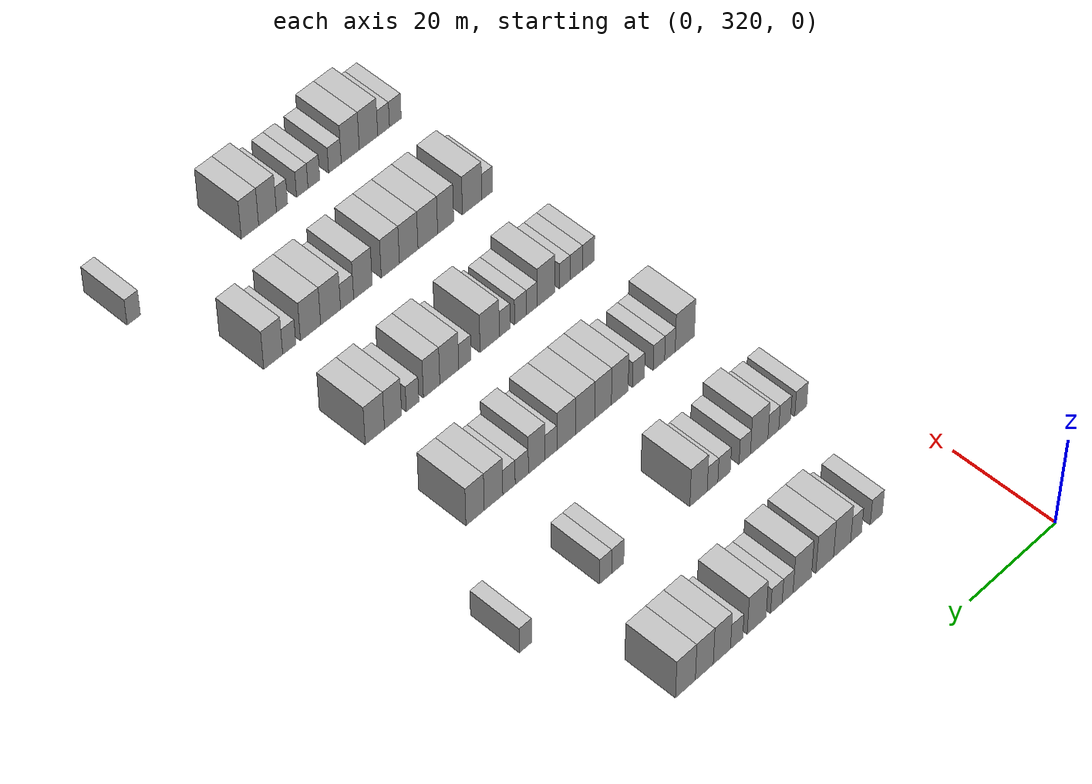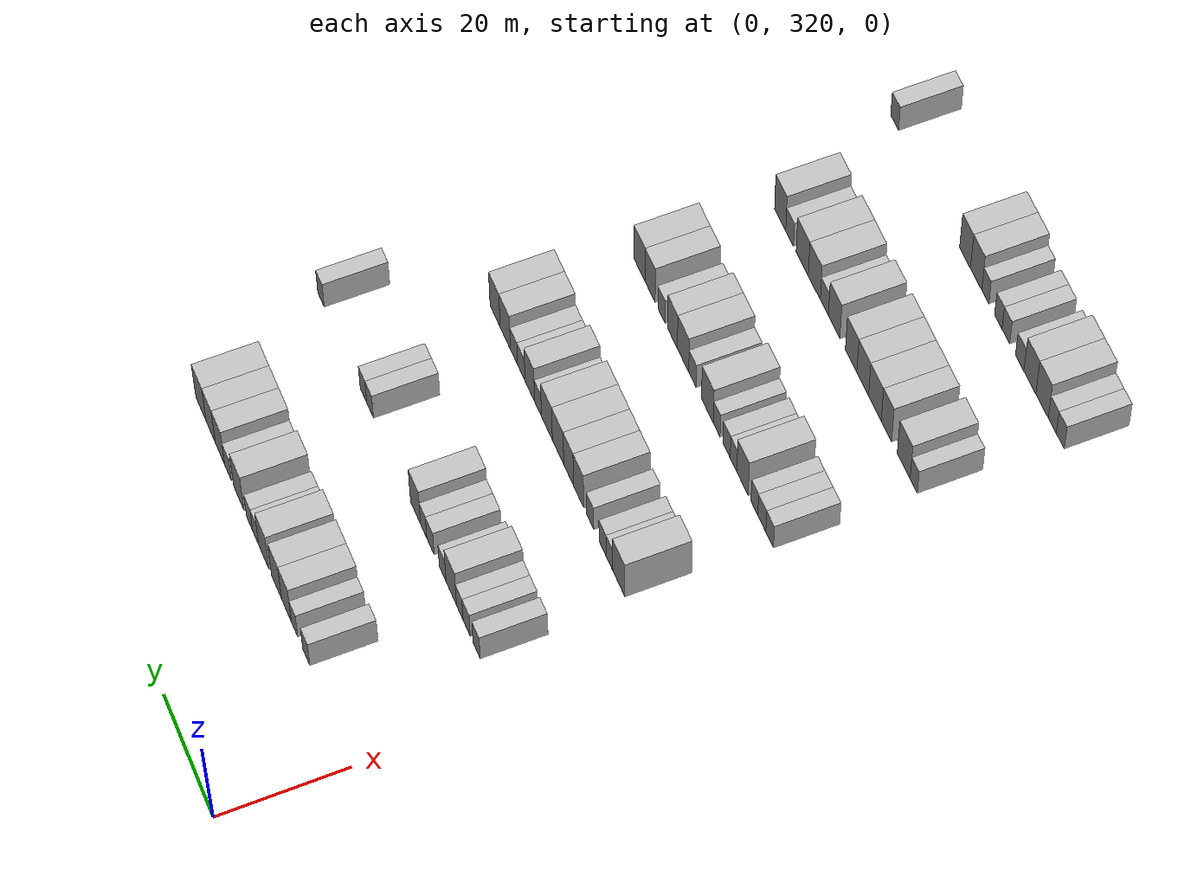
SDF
<sdf version="1.6">
 <world name="default">
  <model name="building_186">
   <static>1</static>
   <pose>25.0000 338.0738 0 0.000000 0.000000 0.000000</pose>
   <link name="link">
    <pose>0 0 3.00 0 0 0</pose>
    <collision name="collision"><geometry><box><size>10.0000 2.7817 6.0000</size></box></geometry></collision>
    <visual name="visual">
     <cast_shadows>0</cast_shadows>
     <geometry><box><size>10.0000 2.7817 6.0000</size></box></geometry>
     <material>
      <script>
       <uri>model://HANNAS_wall/materials/scripts</uri>
       <uri>model://HANNAS_wall/materials/textures</uri>
       <name>vrc/HANNAS_wall</name>
      </script>
     </material>
    </visual>
   </link>
  </model>
  <model name="building_187">
   <static>1</static>
   <pose>25.0000 342.7242 0 0.000000 0.000000 0.000000</pose>
   <link name="link">
    <pose>0 0 3.00 0 0 0</pose>
    <collision name="collision"><geometry><box><size>10.0000 2.5191 6.0000</size></box></geometry></collision>
    <visual name="visual">
     <cast_shadows>0</cast_shadows>
     <geometry><box><size>10.0000 2.5191 6.0000</size></box></geometry>
     <material>
      <script>
       <uri>model://HANNAS_wall/materials/scripts</uri>
       <uri>model://HANNAS_wall/materials/textures</uri>
       <name>vrc/HANNAS_wall</name>
      </script>
     </material>
    </visual>
   </link>
  </model>
  <model name="building_188">
   <static>1</static>
   <pose>25.0000 345.9343 0 0.000000 0.000000 0.000000</pose>
   <link name="link">
    <pose>0 0 4.50 0 0 0</pose>
    <collision name="collision"><geometry><box><size>10.0000 3.9012 9.0000</size></box></geometry></collision>
    <visual name="visual">
     <cast_shadows>0</cast_shadows>
     <geometry><box><size>10.0000 3.9012 9.0000</size></box></geometry>
     <material>
      <script>
       <uri>model://HANNAS_wall/materials/scripts</uri>
       <uri>model://HANNAS_wall/materials/textures</uri>
       <name>vrc/HANNAS_wall</name>
      </script>
     </material>
    </visual>
   </link>
  </model>
  <model name="building_189">
   <static>1</static>
   <pose>25.0000 349.8933 0 0.000000 0.000000 0.000000</pose>
   <link name="link">
    <pose>0 0 4.50 0 0 0</pose>
    <collision name="collision"><geometry><box><size>10.0000 4.0167 9.0000</size></box></geometry></collision>
    <visual name="visual">
     <cast_shadows>0</cast_shadows>
     <geometry><box><size>10.0000 4.0167 9.0000</size></box></geometry>
     <material>
      <script>
       <uri>model://HANNAS_wall/materials/scripts</uri>
       <uri>model://HANNAS_wall/materials/textures</uri>
       <name>vrc/HANNAS_wall</name>
      </script>
     </material>
    </visual>
   </link>
  </model>
  <model name="building_190">
   <static>1</static>
   <pose>25.0000 354.9730 0 0.000000 0.000000 0.000000</pose>
   <link name="link">
    <pose>0 0 4.50 0 0 0</pose>
    <collision name="collision"><geometry><box><size>10.0000 4.1427 9.0000</size></box></geometry></collision>
    <visual name="visual">
     <cast_shadows>0</cast_shadows>
     <geometry><box><size>10.0000 4.1427 9.0000</size></box></geometry>
     <material>
      <script>
       <uri>model://HANNAS_wall/materials/scripts</uri>
       <uri>model://HANNAS_wall/materials/textures</uri>
       <name>vrc/HANNAS_wall</name>
      </script>
     </material>
    </visual>
   </link>
  </model>
  <model name="building_191">
   <static>1</static>
   <pose>25.0000 358.2589 0 0.000000 0.000000 0.000000</pose>
   <link name="link">
    <pose>0 0 3.00 0 0 0</pose>
    <collision name="collision"><geometry><box><size>10.0000 2.4291 6.0000</size></box></geometry></collision>
    <visual name="visual">
     <cast_shadows>0</cast_shadows>
     <geometry><box><size>10.0000 2.4291 6.0000</size></box></geometry>
     <material>
      <script>
       <uri>model://HANNAS_wall/materials/scripts</uri>
       <uri>model://HANNAS_wall/materials/textures</uri>
       <name>vrc/HANNAS_wall</name>
      </script>
     </material>
    </visual>
   </link>
  </model>
  <model name="building_192">
   <static>1</static>
   <pose>25.0000 360.7620 0 0.000000 0.000000 0.000000</pose>
   <link name="link">
    <pose>0 0 3.00 0 0 0</pose>
    <collision name="collision"><geometry><box><size>10.0000 2.5772 6.0000</size></box></geometry></collision>
    <visual name="visual">
     <cast_shadows>0</cast_shadows>
     <geometry><box><size>10.0000 2.5772 6.0000</size></box></geometry>
     <material>
      <script>
       <uri>model://HANNAS_wall/materials/scripts</uri>
       <uri>model://HANNAS_wall/materials/textures</uri>
       <name>vrc/HANNAS_wall</name>
      </script>
     </material>
    </visual>
   </link>
  </model>
  <model name="building_193">
   <static>1</static>
   <pose>25.0000 365.1411 0 0.000000 0.000000 0.000000</pose>
   <link name="link">
    <pose>0 0 4.50 0 0 0</pose>
    <collision name="collision"><geometry><box><size>10.0000 4.1810 9.0000</size></box></geometry></collision>
    <visual name="visual">
     <cast_shadows>0</cast_shadows>
     <geometry><box><size>10.0000 4.1810 9.0000</size></box></geometry>
     <material>
      <script>
       <uri>model://HANNAS_wall/materials/scripts</uri>
       <uri>model://HANNAS_wall/materials/textures</uri>
       <name>vrc/HANNAS_wall</name>
      </script>
     </material>
    </visual>
   </link>
  </model>
  <model name="building_194">
   <static>1</static>
   <pose>25.0000 369.5749 0 0.000000 0.000000 0.000000</pose>
   <link name="link">
    <pose>0 0 3.00 0 0 0</pose>
    <collision name="collision"><geometry><box><size>10.0000 2.6866 6.0000</size></box></geometry></collision>
    <visual name="visual">
     <cast_shadows>0</cast_shadows>
     <geometry><box><size>10.0000 2.6866 6.0000</size></box></geometry>
     <material>
      <script>
       <uri>model://HANNAS_wall/materials/scripts</uri>
       <uri>model://HANNAS_wall/materials/textures</uri>
       <name>vrc/HANNAS_wall</name>
      </script>
     </material>
    </visual>
   </link>
  </model>
  <model name="building_195">
   <static>1</static>
   <pose>25.0000 372.8014 0 0.000000 0.000000 0.000000</pose>
   <link name="link">
    <pose>0 0 4.50 0 0 0</pose>
    <collision name="collision"><geometry><box><size>10.0000 3.7664 9.0000</size></box></geometry></collision>
    <visual name="visual">
     <cast_shadows>0</cast_shadows>
     <geometry><box><size>10.0000 3.7664 9.0000</size></box></geometry>
     <material>
      <script>
       <uri>model://HANNAS_wall/materials/scripts</uri>
       <uri>model://HANNAS_wall/materials/textures</uri>
       <name>vrc/HANNAS_wall</name>
      </script>
     </material>
    </visual>
   </link>
  </model>
  <model name="building_196">
   <static>1</static>
   <pose>25.0000 376.6337 0 0.000000 0.000000 0.000000</pose>
   <link name="link">
    <pose>0 0 4.50 0 0 0</pose>
    <collision name="collision"><geometry><box><size>10.0000 3.8984 9.0000</size></box></geometry></collision>
    <visual name="visual">
     <cast_shadows>0</cast_shadows>
     <geometry><box><size>10.0000 3.8984 9.0000</size></box></geometry>
     <material>
      <script>
       <uri>model://HANNAS_wall/materials/scripts</uri>
       <uri>model://HANNAS_wall/materials/textures</uri>
       <name>vrc/HANNAS_wall</name>
      </script>
     </material>
    </visual>
   </link>
  </model>
  <model name="building_197">
   <static>1</static>
   <pose>25.0000 380.7277 0 0.000000 0.000000 0.000000</pose>
   <link name="link">
    <pose>0 0 4.50 0 0 0</pose>
    <collision name="collision"><geometry><box><size>10.0000 4.2896 9.0000</size></box></geometry></collision>
    <visual name="visual">
     <cast_shadows>0</cast_shadows>
     <geometry><box><size>10.0000 4.2896 9.0000</size></box></geometry>
     <material>
      <script>
       <uri>model://HANNAS_wall/materials/scripts</uri>
       <uri>model://HANNAS_wall/materials/textures</uri>
       <name>vrc/HANNAS_wall</name>
      </script>
     </material>
    </visual>
   </link>
  </model>
  <model name="building_382">
   <static>1</static>
   <pose>47.0000 330.1907 0 0.000000 0.000000 0.000000</pose>
   <link name="link">
    <pose>0 0 3.00 0 0 0</pose>
    <collision name="collision"><geometry><box><size>10.0000 2.7608 6.0000</size></box></geometry></collision>
    <visual name="visual">
     <cast_shadows>0</cast_shadows>
     <geometry><box><size>10.0000 2.7608 6.0000</size></box></geometry>
     <material>
      <script>
       <uri>model://HANNAS_wall/materials/scripts</uri>
       <uri>model://HANNAS_wall/materials/textures</uri>
       <name>vrc/HANNAS_wall</name>
      </script>
     </material>
    </visual>
   </link>
  </model>
  <model name="building_383">
   <static>1</static>
   <pose>47.0000 333.9302 0 0.000000 0.000000 0.000000</pose>
   <link name="link">
    <pose>0 0 3.00 0 0 0</pose>
    <collision name="collision"><geometry><box><size>10.0000 2.7184 6.0000</size></box></geometry></collision>
    <visual name="visual">
     <cast_shadows>0</cast_shadows>
     <geometry><box><size>10.0000 2.7184 6.0000</size></box></geometry>
     <material>
      <script>
       <uri>model://HANNAS_wall/materials/scripts</uri>
       <uri>model://HANNAS_wall/materials/textures</uri>
       <name>vrc/HANNAS_wall</name>
      </script>
     </material>
    </visual>
   </link>
  </model>
  <model name="building_384">
   <static>1</static>
   <pose>47.0000 336.5438 0 0.000000 0.000000 0.000000</pose>
   <link name="link">
    <pose>0 0 3.00 0 0 0</pose>
    <collision name="collision"><geometry><box><size>10.0000 2.5088 6.0000</size></box></geometry></collision>
    <visual name="visual">
     <cast_shadows>0</cast_shadows>
     <geometry><box><size>10.0000 2.5088 6.0000</size></box></geometry>
     <material>
      <script>
       <uri>model://HANNAS_wall/materials/scripts</uri>
       <uri>model://HANNAS_wall/materials/textures</uri>
       <name>vrc/HANNAS_wall</name>
      </script>
     </material>
    </visual>
   </link>
  </model>
  <model name="building_385">
   <static>1</static>
   <pose>47.0000 339.8049 0 0.000000 0.000000 0.000000</pose>
   <link name="link">
    <pose>0 0 4.50 0 0 0</pose>
    <collision name="collision"><geometry><box><size>10.0000 4.0134 9.0000</size></box></geometry></collision>
    <visual name="visual">
     <cast_shadows>0</cast_shadows>
     <geometry><box><size>10.0000 4.0134 9.0000</size></box></geometry>
     <material>
      <script>
       <uri>model://HANNAS_wall/materials/scripts</uri>
       <uri>model://HANNAS_wall/materials/textures</uri>
       <name>vrc/HANNAS_wall</name>
      </script>
     </material>
    </visual>
   </link>
  </model>
  <model name="building_386">
   <static>1</static>
   <pose>47.0000 343.1090 0 0.000000 0.000000 0.000000</pose>
   <link name="link">
    <pose>0 0 3.00 0 0 0</pose>
    <collision name="collision"><geometry><box><size>10.0000 2.5949 6.0000</size></box></geometry></collision>
    <visual name="visual">
     <cast_shadows>0</cast_shadows>
     <geometry><box><size>10.0000 2.5949 6.0000</size></box></geometry>
     <material>
      <script>
       <uri>model://HANNAS_wall/materials/scripts</uri>
       <uri>model://HANNAS_wall/materials/textures</uri>
       <name>vrc/HANNAS_wall</name>
      </script>
     </material>
    </visual>
   </link>
  </model>
  <model name="building_387">
   <static>1</static>
   <pose>47.0000 347.8164 0 0.000000 0.000000 0.000000</pose>
   <link name="link">
    <pose>0 0 3.00 0 0 0</pose>
    <collision name="collision"><geometry><box><size>10.0000 2.8200 6.0000</size></box></geometry></collision>
    <visual name="visual">
     <cast_shadows>0</cast_shadows>
     <geometry><box><size>10.0000 2.8200 6.0000</size></box></geometry>
     <material>
      <script>
       <uri>model://HANNAS_wall/materials/scripts</uri>
       <uri>model://HANNAS_wall/materials/textures</uri>
       <name>vrc/HANNAS_wall</name>
      </script>
     </material>
    </visual>
   </link>
  </model>
  <model name="building_388">
   <static>1</static>
   <pose>47.0000 350.4335 0 0.000000 0.000000 0.000000</pose>
   <link name="link">
    <pose>0 0 3.00 0 0 0</pose>
    <collision name="collision"><geometry><box><size>10.0000 2.4140 6.0000</size></box></geometry></collision>
    <visual name="visual">
     <cast_shadows>0</cast_shadows>
     <geometry><box><size>10.0000 2.4140 6.0000</size></box></geometry>
     <material>
      <script>
       <uri>model://HANNAS_wall/materials/scripts</uri>
       <uri>model://HANNAS_wall/materials/textures</uri>
       <name>vrc/HANNAS_wall</name>
      </script>
     </material>
    </visual>
   </link>
  </model>
  <model name="building_389">
   <static>1</static>
   <pose>47.0000 353.5852 0 0.000000 0.000000 0.000000</pose>
   <link name="link">
    <pose>0 0 4.50 0 0 0</pose>
    <collision name="collision"><geometry><box><size>10.0000 3.8894 9.0000</size></box></geometry></collision>
    <visual name="visual">
     <cast_shadows>0</cast_shadows>
     <geometry><box><size>10.0000 3.8894 9.0000</size></box></geometry>
     <material>
      <script>
       <uri>model://HANNAS_wall/materials/scripts</uri>
       <uri>model://HANNAS_wall/materials/textures</uri>
       <name>vrc/HANNAS_wall</name>
      </script>
     </material>
    </visual>
   </link>
  </model>
  <model name="building_390">
   <static>1</static>
   <pose>47.0000 371.5215 0 0.000000 0.000000 0.000000</pose>
   <link name="link">
    <pose>0 0 3.00 0 0 0</pose>
    <collision name="collision"><geometry><box><size>10.0000 2.6611 6.0000</size></box></geometry></collision>
    <visual name="visual">
     <cast_shadows>0</cast_shadows>
     <geometry><box><size>10.0000 2.6611 6.0000</size></box></geometry>
     <material>
      <script>
       <uri>model://HANNAS_wall/materials/scripts</uri>
       <uri>model://HANNAS_wall/materials/textures</uri>
       <name>vrc/HANNAS_wall</name>
      </script>
     </material>
    </visual>
   </link>
  </model>
  <model name="building_391">
   <static>1</static>
   <pose>47.0000 374.1598 0 0.000000 0.000000 0.000000</pose>
   <link name="link">
    <pose>0 0 3.00 0 0 0</pose>
    <collision name="collision"><geometry><box><size>10.0000 2.6155 6.0000</size></box></geometry></collision>
    <visual name="visual">
     <cast_shadows>0</cast_shadows>
     <geometry><box><size>10.0000 2.6155 6.0000</size></box></geometry>
     <material>
      <script>
       <uri>model://HANNAS_wall/materials/scripts</uri>
       <uri>model://HANNAS_wall/materials/textures</uri>
       <name>vrc/HANNAS_wall</name>
      </script>
     </material>
    </visual>
   </link>
  </model>
  <model name="building_392">
   <static>1</static>
   <pose>47.0000 391.3620 0 0.000000 0.000000 0.000000</pose>
   <link name="link">
    <pose>0 0 3.00 0 0 0</pose>
    <collision name="collision"><geometry><box><size>10.0000 2.5963 6.0000</size></box></geometry></collision>
    <visual name="visual">
     <cast_shadows>0</cast_shadows>
     <geometry><box><size>10.0000 2.5963 6.0000</size></box></geometry>
     <material>
      <script>
       <uri>model://HANNAS_wall/materials/scripts</uri>
       <uri>model://HANNAS_wall/materials/textures</uri>
       <name>vrc/HANNAS_wall</name>
      </script>
     </material>
    </visual>
   </link>
  </model>
  <model name="building_569">
   <static>1</static>
   <pose>69.0000 332.4709 0 0.000000 0.000000 0.000000</pose>
   <link name="link">
    <pose>0 0 4.50 0 0 0</pose>
    <collision name="collision"><geometry><box><size>10.0000 4.4505 9.0000</size></box></geometry></collision>
    <visual name="visual">
     <cast_shadows>0</cast_shadows>
     <geometry><box><size>10.0000 4.4505 9.0000</size></box></geometry>
     <material>
      <script>
       <uri>model://HANNAS_wall/materials/scripts</uri>
       <uri>model://HANNAS_wall/materials/textures</uri>
       <name>vrc/HANNAS_wall</name>
      </script>
     </material>
    </visual>
   </link>
  </model>
  <model name="building_570">
   <static>1</static>
   <pose>69.0000 335.9129 0 0.000000 0.000000 0.000000</pose>
   <link name="link">
    <pose>0 0 3.00 0 0 0</pose>
    <collision name="collision"><geometry><box><size>10.0000 2.4335 6.0000</size></box></geometry></collision>
    <visual name="visual">
     <cast_shadows>0</cast_shadows>
     <geometry><box><size>10.0000 2.4335 6.0000</size></box></geometry>
     <material>
      <script>
       <uri>model://HANNAS_wall/materials/scripts</uri>
       <uri>model://HANNAS_wall/materials/textures</uri>
       <name>vrc/HANNAS_wall</name>
      </script>
     </material>
    </visual>
   </link>
  </model>
  <model name="building_571">
   <static>1</static>
   <pose>69.0000 338.4387 0 0.000000 0.000000 0.000000</pose>
   <link name="link">
    <pose>0 0 3.00 0 0 0</pose>
    <collision name="collision"><geometry><box><size>10.0000 2.6179 6.0000</size></box></geometry></collision>
    <visual name="visual">
     <cast_shadows>0</cast_shadows>
     <geometry><box><size>10.0000 2.6179 6.0000</size></box></geometry>
     <material>
      <script>
       <uri>model://HANNAS_wall/materials/scripts</uri>
       <uri>model://HANNAS_wall/materials/textures</uri>
       <name>vrc/HANNAS_wall</name>
      </script>
     </material>
    </visual>
   </link>
  </model>
  <model name="building_572">
   <static>1</static>
   <pose>69.0000 343.1045 0 0.000000 0.000000 0.000000</pose>
   <link name="link">
    <pose>0 0 3.00 0 0 0</pose>
    <collision name="collision"><geometry><box><size>10.0000 2.7137 6.0000</size></box></geometry></collision>
    <visual name="visual">
     <cast_shadows>0</cast_shadows>
     <geometry><box><size>10.0000 2.7137 6.0000</size></box></geometry>
     <material>
      <script>
       <uri>model://HANNAS_wall/materials/scripts</uri>
       <uri>model://HANNAS_wall/materials/textures</uri>
       <name>vrc/HANNAS_wall</name>
      </script>
     </material>
    </visual>
   </link>
  </model>
  <model name="building_573">
   <static>1</static>
   <pose>69.0000 347.3606 0 0.000000 0.000000 0.000000</pose>
   <link name="link">
    <pose>0 0 4.50 0 0 0</pose>
    <collision name="collision"><geometry><box><size>10.0000 3.7985 9.0000</size></box></geometry></collision>
    <visual name="visual">
     <cast_shadows>0</cast_shadows>
     <geometry><box><size>10.0000 3.7985 9.0000</size></box></geometry>
     <material>
      <script>
       <uri>model://HANNAS_wall/materials/scripts</uri>
       <uri>model://HANNAS_wall/materials/textures</uri>
       <name>vrc/HANNAS_wall</name>
      </script>
     </material>
    </visual>
   </link>
  </model>
  <model name="building_574">
   <static>1</static>
   <pose>69.0000 351.1142 0 0.000000 0.000000 0.000000</pose>
   <link name="link">
    <pose>0 0 4.50 0 0 0</pose>
    <collision name="collision"><geometry><box><size>10.0000 3.7087 9.0000</size></box></geometry></collision>
    <visual name="visual">
     <cast_shadows>0</cast_shadows>
     <geometry><box><size>10.0000 3.7087 9.0000</size></box></geometry>
     <material>
      <script>
       <uri>model://HANNAS_wall/materials/scripts</uri>
       <uri>model://HANNAS_wall/materials/textures</uri>
       <name>vrc/HANNAS_wall</name>
      </script>
     </material>
    </visual>
   </link>
  </model>
  <model name="building_575">
   <static>1</static>
   <pose>69.0000 355.1375 0 0.000000 0.000000 0.000000</pose>
   <link name="link">
    <pose>0 0 4.50 0 0 0</pose>
    <collision name="collision"><geometry><box><size>10.0000 4.3380 9.0000</size></box></geometry></collision>
    <visual name="visual">
     <cast_shadows>0</cast_shadows>
     <geometry><box><size>10.0000 4.3380 9.0000</size></box></geometry>
     <material>
      <script>
       <uri>model://HANNAS_wall/materials/scripts</uri>
       <uri>model://HANNAS_wall/materials/textures</uri>
       <name>vrc/HANNAS_wall</name>
      </script>
     </material>
    </visual>
   </link>
  </model>
  <model name="building_576">
   <static>1</static>
   <pose>69.0000 359.3824 0 0.000000 0.000000 0.000000</pose>
   <link name="link">
    <pose>0 0 4.50 0 0 0</pose>
    <collision name="collision"><geometry><box><size>10.0000 4.1518 9.0000</size></box></geometry></collision>
    <visual name="visual">
     <cast_shadows>0</cast_shadows>
     <geometry><box><size>10.0000 4.1518 9.0000</size></box></geometry>
     <material>
      <script>
       <uri>model://HANNAS_wall/materials/scripts</uri>
       <uri>model://HANNAS_wall/materials/textures</uri>
       <name>vrc/HANNAS_wall</name>
      </script>
     </material>
    </visual>
   </link>
  </model>
  <model name="building_577">
   <static>1</static>
   <pose>69.0000 362.7530 0 0.000000 0.000000 0.000000</pose>
   <link name="link">
    <pose>0 0 3.00 0 0 0</pose>
    <collision name="collision"><geometry><box><size>10.0000 2.5895 6.0000</size></box></geometry></collision>
    <visual name="visual">
     <cast_shadows>0</cast_shadows>
     <geometry><box><size>10.0000 2.5895 6.0000</size></box></geometry>
     <material>
      <script>
       <uri>model://HANNAS_wall/materials/scripts</uri>
       <uri>model://HANNAS_wall/materials/textures</uri>
       <name>vrc/HANNAS_wall</name>
      </script>
     </material>
    </visual>
   </link>
  </model>
  <model name="building_578">
   <static>1</static>
   <pose>69.0000 365.8968 0 0.000000 0.000000 0.000000</pose>
   <link name="link">
    <pose>0 0 4.50 0 0 0</pose>
    <collision name="collision"><geometry><box><size>10.0000 3.6981 9.0000</size></box></geometry></collision>
    <visual name="visual">
     <cast_shadows>0</cast_shadows>
     <geometry><box><size>10.0000 3.6981 9.0000</size></box></geometry>
     <material>
      <script>
       <uri>model://HANNAS_wall/materials/scripts</uri>
       <uri>model://HANNAS_wall/materials/textures</uri>
       <name>vrc/HANNAS_wall</name>
      </script>
     </material>
    </visual>
   </link>
  </model>
  <model name="building_579">
   <static>1</static>
   <pose>69.0000 369.1916 0 0.000000 0.000000 0.000000</pose>
   <link name="link">
    <pose>0 0 3.00 0 0 0</pose>
    <collision name="collision"><geometry><box><size>10.0000 2.8915 6.0000</size></box></geometry></collision>
    <visual name="visual">
     <cast_shadows>0</cast_shadows>
     <geometry><box><size>10.0000 2.8915 6.0000</size></box></geometry>
     <material>
      <script>
       <uri>model://HANNAS_wall/materials/scripts</uri>
       <uri>model://HANNAS_wall/materials/textures</uri>
       <name>vrc/HANNAS_wall</name>
      </script>
     </material>
    </visual>
   </link>
  </model>
  <model name="building_580">
   <static>1</static>
   <pose>69.0000 371.9877 0 0.000000 0.000000 0.000000</pose>
   <link name="link">
    <pose>0 0 3.00 0 0 0</pose>
    <collision name="collision"><geometry><box><size>10.0000 2.7006 6.0000</size></box></geometry></collision>
    <visual name="visual">
     <cast_shadows>0</cast_shadows>
     <geometry><box><size>10.0000 2.7006 6.0000</size></box></geometry>
     <material>
      <script>
       <uri>model://HANNAS_wall/materials/scripts</uri>
       <uri>model://HANNAS_wall/materials/textures</uri>
       <name>vrc/HANNAS_wall</name>
      </script>
     </material>
    </visual>
   </link>
  </model>
  <model name="building_581">
   <static>1</static>
   <pose>69.0000 375.3549 0 0.000000 0.000000 0.000000</pose>
   <link name="link">
    <pose>0 0 4.50 0 0 0</pose>
    <collision name="collision"><geometry><box><size>10.0000 4.0339 9.0000</size></box></geometry></collision>
    <visual name="visual">
     <cast_shadows>0</cast_shadows>
     <geometry><box><size>10.0000 4.0339 9.0000</size></box></geometry>
     <material>
      <script>
       <uri>model://HANNAS_wall/materials/scripts</uri>
       <uri>model://HANNAS_wall/materials/textures</uri>
       <name>vrc/HANNAS_wall</name>
      </script>
     </material>
    </visual>
   </link>
  </model>
  <model name="building_582">
   <static>1</static>
   <pose>69.0000 379.3472 0 0.000000 0.000000 0.000000</pose>
   <link name="link">
    <pose>0 0 4.50 0 0 0</pose>
    <collision name="collision"><geometry><box><size>10.0000 3.9507 9.0000</size></box></geometry></collision>
    <visual name="visual">
     <cast_shadows>0</cast_shadows>
     <geometry><box><size>10.0000 3.9507 9.0000</size></box></geometry>
     <material>
      <script>
       <uri>model://HANNAS_wall/materials/scripts</uri>
       <uri>model://HANNAS_wall/materials/textures</uri>
       <name>vrc/HANNAS_wall</name>
      </script>
     </material>
    </visual>
   </link>
  </model>
  <model name="building_771">
   <static>1</static>
   <pose>91.0000 330.9469 0 0.000000 0.000000 0.000000</pose>
   <link name="link">
    <pose>0 0 3.00 0 0 0</pose>
    <collision name="collision"><geometry><box><size>10.0000 2.7263 6.0000</size></box></geometry></collision>
    <visual name="visual">
     <cast_shadows>0</cast_shadows>
     <geometry><box><size>10.0000 2.7263 6.0000</size></box></geometry>
     <material>
      <script>
       <uri>model://HANNAS_wall/materials/scripts</uri>
       <uri>model://HANNAS_wall/materials/textures</uri>
       <name>vrc/HANNAS_wall</name>
      </script>
     </material>
    </visual>
   </link>
  </model>
  <model name="building_772">
   <static>1</static>
   <pose>91.0000 333.7465 0 0.000000 0.000000 0.000000</pose>
   <link name="link">
    <pose>0 0 3.00 0 0 0</pose>
    <collision name="collision"><geometry><box><size>10.0000 2.8730 6.0000</size></box></geometry></collision>
    <visual name="visual">
     <cast_shadows>0</cast_shadows>
     <geometry><box><size>10.0000 2.8730 6.0000</size></box></geometry>
     <material>
      <script>
       <uri>model://HANNAS_wall/materials/scripts</uri>
       <uri>model://HANNAS_wall/materials/textures</uri>
       <name>vrc/HANNAS_wall</name>
      </script>
     </material>
    </visual>
   </link>
  </model>
  <model name="building_773">
   <static>1</static>
   <pose>91.0000 336.4061 0 0.000000 0.000000 0.000000</pose>
   <link name="link">
    <pose>0 0 3.00 0 0 0</pose>
    <collision name="collision"><geometry><box><size>10.0000 2.4462 6.0000</size></box></geometry></collision>
    <visual name="visual">
     <cast_shadows>0</cast_shadows>
     <geometry><box><size>10.0000 2.4462 6.0000</size></box></geometry>
     <material>
      <script>
       <uri>model://HANNAS_wall/materials/scripts</uri>
       <uri>model://HANNAS_wall/materials/textures</uri>
       <name>vrc/HANNAS_wall</name>
      </script>
     </material>
    </visual>
   </link>
  </model>
  <model name="building_774">
   <static>1</static>
   <pose>91.0000 340.6770 0 0.000000 0.000000 0.000000</pose>
   <link name="link">
    <pose>0 0 4.50 0 0 0</pose>
    <collision name="collision"><geometry><box><size>10.0000 4.0955 9.0000</size></box></geometry></collision>
    <visual name="visual">
     <cast_shadows>0</cast_shadows>
     <geometry><box><size>10.0000 4.0955 9.0000</size></box></geometry>
     <material>
      <script>
       <uri>model://HANNAS_wall/materials/scripts</uri>
       <uri>model://HANNAS_wall/materials/textures</uri>
       <name>vrc/HANNAS_wall</name>
      </script>
     </material>
    </visual>
   </link>
  </model>
  <model name="building_775">
   <static>1</static>
   <pose>91.0000 343.9336 0 0.000000 0.000000 0.000000</pose>
   <link name="link">
    <pose>0 0 3.00 0 0 0</pose>
    <collision name="collision"><geometry><box><size>10.0000 2.4177 6.0000</size></box></geometry></collision>
    <visual name="visual">
     <cast_shadows>0</cast_shadows>
     <geometry><box><size>10.0000 2.4177 6.0000</size></box></geometry>
     <material>
      <script>
       <uri>model://HANNAS_wall/materials/scripts</uri>
       <uri>model://HANNAS_wall/materials/textures</uri>
       <name>vrc/HANNAS_wall</name>
      </script>
     </material>
    </visual>
   </link>
  </model>
  <model name="building_776">
   <static>1</static>
   <pose>91.0000 346.4933 0 0.000000 0.000000 0.000000</pose>
   <link name="link">
    <pose>0 0 3.00 0 0 0</pose>
    <collision name="collision"><geometry><box><size>10.0000 2.7017 6.0000</size></box></geometry></collision>
    <visual name="visual">
     <cast_shadows>0</cast_shadows>
     <geometry><box><size>10.0000 2.7017 6.0000</size></box></geometry>
     <material>
      <script>
       <uri>model://HANNAS_wall/materials/scripts</uri>
       <uri>model://HANNAS_wall/materials/textures</uri>
       <name>vrc/HANNAS_wall</name>
      </script>
     </material>
    </visual>
   </link>
  </model>
  <model name="building_777">
   <static>1</static>
   <pose>91.0000 350.0606 0 0.000000 0.000000 0.000000</pose>
   <link name="link">
    <pose>0 0 3.00 0 0 0</pose>
    <collision name="collision"><geometry><box><size>10.0000 2.4330 6.0000</size></box></geometry></collision>
    <visual name="visual">
     <cast_shadows>0</cast_shadows>
     <geometry><box><size>10.0000 2.4330 6.0000</size></box></geometry>
     <material>
      <script>
       <uri>model://HANNAS_wall/materials/scripts</uri>
       <uri>model://HANNAS_wall/materials/textures</uri>
       <name>vrc/HANNAS_wall</name>
      </script>
     </material>
    </visual>
   </link>
  </model>
  <model name="building_778">
   <static>1</static>
   <pose>91.0000 353.4408 0 0.000000 0.000000 0.000000</pose>
   <link name="link">
    <pose>0 0 4.50 0 0 0</pose>
    <collision name="collision"><geometry><box><size>10.0000 4.3274 9.0000</size></box></geometry></collision>
    <visual name="visual">
     <cast_shadows>0</cast_shadows>
     <geometry><box><size>10.0000 4.3274 9.0000</size></box></geometry>
     <material>
      <script>
       <uri>model://HANNAS_wall/materials/scripts</uri>
       <uri>model://HANNAS_wall/materials/textures</uri>
       <name>vrc/HANNAS_wall</name>
      </script>
     </material>
    </visual>
   </link>
  </model>
  <model name="building_779">
   <static>1</static>
   <pose>91.0000 358.9722 0 0.000000 0.000000 0.000000</pose>
   <link name="link">
    <pose>0 0 3.00 0 0 0</pose>
    <collision name="collision"><geometry><box><size>10.0000 2.7356 6.0000</size></box></geometry></collision>
    <visual name="visual">
     <cast_shadows>0</cast_shadows>
     <geometry><box><size>10.0000 2.7356 6.0000</size></box></geometry>
     <material>
      <script>
       <uri>model://HANNAS_wall/materials/scripts</uri>
       <uri>model://HANNAS_wall/materials/textures</uri>
       <name>vrc/HANNAS_wall</name>
      </script>
     </material>
    </visual>
   </link>
  </model>
  <model name="building_780">
   <static>1</static>
   <pose>91.0000 362.4319 0 0.000000 0.000000 0.000000</pose>
   <link name="link">
    <pose>0 0 4.50 0 0 0</pose>
    <collision name="collision"><geometry><box><size>10.0000 4.1838 9.0000</size></box></geometry></collision>
    <visual name="visual">
     <cast_shadows>0</cast_shadows>
     <geometry><box><size>10.0000 4.1838 9.0000</size></box></geometry>
     <material>
      <script>
       <uri>model://HANNAS_wall/materials/scripts</uri>
       <uri>model://HANNAS_wall/materials/textures</uri>
       <name>vrc/HANNAS_wall</name>
      </script>
     </material>
    </visual>
   </link>
  </model>
  <model name="building_781">
   <static>1</static>
   <pose>91.0000 366.3294 0 0.000000 0.000000 0.000000</pose>
   <link name="link">
    <pose>0 0 4.50 0 0 0</pose>
    <collision name="collision"><geometry><box><size>10.0000 3.6111 9.0000</size></box></geometry></collision>
    <visual name="visual">
     <cast_shadows>0</cast_shadows>
     <geometry><box><size>10.0000 3.6111 9.0000</size></box></geometry>
     <material>
      <script>
       <uri>model://HANNAS_wall/materials/scripts</uri>
       <uri>model://HANNAS_wall/materials/textures</uri>
       <name>vrc/HANNAS_wall</name>
      </script>
     </material>
    </visual>
   </link>
  </model>
  <model name="building_782">
   <static>1</static>
   <pose>91.0000 370.5107 0 0.000000 0.000000 0.000000</pose>
   <link name="link">
    <pose>0 0 3.00 0 0 0</pose>
    <collision name="collision"><geometry><box><size>10.0000 2.7515 6.0000</size></box></geometry></collision>
    <visual name="visual">
     <cast_shadows>0</cast_shadows>
     <geometry><box><size>10.0000 2.7515 6.0000</size></box></geometry>
     <material>
      <script>
       <uri>model://HANNAS_wall/materials/scripts</uri>
       <uri>model://HANNAS_wall/materials/textures</uri>
       <name>vrc/HANNAS_wall</name>
      </script>
     </material>
    </visual>
   </link>
  </model>
  <model name="building_783">
   <static>1</static>
   <pose>91.0000 374.7571 0 0.000000 0.000000 0.000000</pose>
   <link name="link">
    <pose>0 0 4.50 0 0 0</pose>
    <collision name="collision"><geometry><box><size>10.0000 3.7413 9.0000</size></box></geometry></collision>
    <visual name="visual">
     <cast_shadows>0</cast_shadows>
     <geometry><box><size>10.0000 3.7413 9.0000</size></box></geometry>
     <material>
      <script>
       <uri>model://HANNAS_wall/materials/scripts</uri>
       <uri>model://HANNAS_wall/materials/textures</uri>
       <name>vrc/HANNAS_wall</name>
      </script>
     </material>
    </visual>
   </link>
  </model>
  <model name="building_784">
   <static>1</static>
   <pose>91.0000 378.7083 0 0.000000 0.000000 0.000000</pose>
   <link name="link">
    <pose>0 0 4.50 0 0 0</pose>
    <collision name="collision"><geometry><box><size>10.0000 4.1613 9.0000</size></box></geometry></collision>
    <visual name="visual">
     <cast_shadows>0</cast_shadows>
     <geometry><box><size>10.0000 4.1613 9.0000</size></box></geometry>
     <material>
      <script>
       <uri>model://HANNAS_wall/materials/scripts</uri>
       <uri>model://HANNAS_wall/materials/textures</uri>
       <name>vrc/HANNAS_wall</name>
      </script>
     </material>
    </visual>
   </link>
  </model>
  <model name="building_971">
   <static>1</static>
   <pose>113.0000 331.2683 0 0.000000 0.000000 0.000000</pose>
   <link name="link">
    <pose>0 0 3.00 0 0 0</pose>
    <collision name="collision"><geometry><box><size>10.0000 2.4944 6.0000</size></box></geometry></collision>
    <visual name="visual">
     <cast_shadows>0</cast_shadows>
     <geometry><box><size>10.0000 2.4944 6.0000</size></box></geometry>
     <material>
      <script>
       <uri>model://HANNAS_wall/materials/scripts</uri>
       <uri>model://HANNAS_wall/materials/textures</uri>
       <name>vrc/HANNAS_wall</name>
      </script>
     </material>
    </visual>
   </link>
  </model>
  <model name="building_972">
   <static>1</static>
   <pose>113.0000 334.7497 0 0.000000 0.000000 0.000000</pose>
   <link name="link">
    <pose>0 0 4.50 0 0 0</pose>
    <collision name="collision"><geometry><box><size>10.0000 4.4685 9.0000</size></box></geometry></collision>
    <visual name="visual">
     <cast_shadows>0</cast_shadows>
     <geometry><box><size>10.0000 4.4685 9.0000</size></box></geometry>
     <material>
      <script>
       <uri>model://HANNAS_wall/materials/scripts</uri>
       <uri>model://HANNAS_wall/materials/textures</uri>
       <name>vrc/HANNAS_wall</name>
      </script>
     </material>
    </visual>
   </link>
  </model>
  <model name="building_973">
   <static>1</static>
   <pose>113.0000 340.8098 0 0.000000 0.000000 0.000000</pose>
   <link name="link">
    <pose>0 0 4.50 0 0 0</pose>
    <collision name="collision"><geometry><box><size>10.0000 3.6517 9.0000</size></box></geometry></collision>
    <visual name="visual">
     <cast_shadows>0</cast_shadows>
     <geometry><box><size>10.0000 3.6517 9.0000</size></box></geometry>
     <material>
      <script>
       <uri>model://HANNAS_wall/materials/scripts</uri>
       <uri>model://HANNAS_wall/materials/textures</uri>
       <name>vrc/HANNAS_wall</name>
      </script>
     </material>
    </visual>
   </link>
  </model>
  <model name="building_974">
   <static>1</static>
   <pose>113.0000 344.8659 0 0.000000 0.000000 0.000000</pose>
   <link name="link">
    <pose>0 0 4.50 0 0 0</pose>
    <collision name="collision"><geometry><box><size>10.0000 4.4605 9.0000</size></box></geometry></collision>
    <visual name="visual">
     <cast_shadows>0</cast_shadows>
     <geometry><box><size>10.0000 4.4605 9.0000</size></box></geometry>
     <material>
      <script>
       <uri>model://HANNAS_wall/materials/scripts</uri>
       <uri>model://HANNAS_wall/materials/textures</uri>
       <name>vrc/HANNAS_wall</name>
      </script>
     </material>
    </visual>
   </link>
  </model>
  <model name="building_975">
   <static>1</static>
   <pose>113.0000 349.1850 0 0.000000 0.000000 0.000000</pose>
   <link name="link">
    <pose>0 0 4.50 0 0 0</pose>
    <collision name="collision"><geometry><box><size>10.0000 4.1776 9.0000</size></box></geometry></collision>
    <visual name="visual">
     <cast_shadows>0</cast_shadows>
     <geometry><box><size>10.0000 4.1776 9.0000</size></box></geometry>
     <material>
      <script>
       <uri>model://HANNAS_wall/materials/scripts</uri>
       <uri>model://HANNAS_wall/materials/textures</uri>
       <name>vrc/HANNAS_wall</name>
      </script>
     </material>
    </visual>
   </link>
  </model>
  <model name="building_976">
   <static>1</static>
   <pose>113.0000 353.3076 0 0.000000 0.000000 0.000000</pose>
   <link name="link">
    <pose>0 0 4.50 0 0 0</pose>
    <collision name="collision"><geometry><box><size>10.0000 4.0677 9.0000</size></box></geometry></collision>
    <visual name="visual">
     <cast_shadows>0</cast_shadows>
     <geometry><box><size>10.0000 4.0677 9.0000</size></box></geometry>
     <material>
      <script>
       <uri>model://HANNAS_wall/materials/scripts</uri>
       <uri>model://HANNAS_wall/materials/textures</uri>
       <name>vrc/HANNAS_wall</name>
      </script>
     </material>
    </visual>
   </link>
  </model>
  <model name="building_977">
   <static>1</static>
   <pose>113.0000 359.4086 0 0.000000 0.000000 0.000000</pose>
   <link name="link">
    <pose>0 0 4.50 0 0 0</pose>
    <collision name="collision"><geometry><box><size>10.0000 4.1343 9.0000</size></box></geometry></collision>
    <visual name="visual">
     <cast_shadows>0</cast_shadows>
     <geometry><box><size>10.0000 4.1343 9.0000</size></box></geometry>
     <material>
      <script>
       <uri>model://HANNAS_wall/materials/scripts</uri>
       <uri>model://HANNAS_wall/materials/textures</uri>
       <name>vrc/HANNAS_wall</name>
      </script>
     </material>
    </visual>
   </link>
  </model>
  <model name="building_978">
   <static>1</static>
   <pose>113.0000 362.9224 0 0.000000 0.000000 0.000000</pose>
   <link name="link">
    <pose>0 0 3.00 0 0 0</pose>
    <collision name="collision"><geometry><box><size>10.0000 2.8932 6.0000</size></box></geometry></collision>
    <visual name="visual">
     <cast_shadows>0</cast_shadows>
     <geometry><box><size>10.0000 2.8932 6.0000</size></box></geometry>
     <material>
      <script>
       <uri>model://HANNAS_wall/materials/scripts</uri>
       <uri>model://HANNAS_wall/materials/textures</uri>
       <name>vrc/HANNAS_wall</name>
      </script>
     </material>
    </visual>
   </link>
  </model>
  <model name="building_979">
   <static>1</static>
   <pose>113.0000 366.5559 0 0.000000 0.000000 0.000000</pose>
   <link name="link">
    <pose>0 0 4.50 0 0 0</pose>
    <collision name="collision"><geometry><box><size>10.0000 4.3739 9.0000</size></box></geometry></collision>
    <visual name="visual">
     <cast_shadows>0</cast_shadows>
     <geometry><box><size>10.0000 4.3739 9.0000</size></box></geometry>
     <material>
      <script>
       <uri>model://HANNAS_wall/materials/scripts</uri>
       <uri>model://HANNAS_wall/materials/textures</uri>
       <name>vrc/HANNAS_wall</name>
      </script>
     </material>
    </visual>
   </link>
  </model>
  <model name="building_980">
   <static>1</static>
   <pose>113.0000 370.9513 0 0.000000 0.000000 0.000000</pose>
   <link name="link">
    <pose>0 0 4.50 0 0 0</pose>
    <collision name="collision"><geometry><box><size>10.0000 4.4168 9.0000</size></box></geometry></collision>
    <visual name="visual">
     <cast_shadows>0</cast_shadows>
     <geometry><box><size>10.0000 4.4168 9.0000</size></box></geometry>
     <material>
      <script>
       <uri>model://HANNAS_wall/materials/scripts</uri>
       <uri>model://HANNAS_wall/materials/textures</uri>
       <name>vrc/HANNAS_wall</name>
      </script>
     </material>
    </visual>
   </link>
  </model>
  <model name="building_981">
   <static>1</static>
   <pose>113.0000 375.5833 0 0.000000 0.000000 0.000000</pose>
   <link name="link">
    <pose>0 0 3.00 0 0 0</pose>
    <collision name="collision"><geometry><box><size>10.0000 2.8473 6.0000</size></box></geometry></collision>
    <visual name="visual">
     <cast_shadows>0</cast_shadows>
     <geometry><box><size>10.0000 2.8473 6.0000</size></box></geometry>
     <material>
      <script>
       <uri>model://HANNAS_wall/materials/scripts</uri>
       <uri>model://HANNAS_wall/materials/textures</uri>
       <name>vrc/HANNAS_wall</name>
      </script>
     </material>
    </visual>
   </link>
  </model>
  <model name="building_982">
   <static>1</static>
   <pose>113.0000 379.0505 0 0.000000 0.000000 0.000000</pose>
   <link name="link">
    <pose>0 0 4.50 0 0 0</pose>
    <collision name="collision"><geometry><box><size>10.0000 4.0870 9.0000</size></box></geometry></collision>
    <visual name="visual">
     <cast_shadows>0</cast_shadows>
     <geometry><box><size>10.0000 4.0870 9.0000</size></box></geometry>
     <material>
      <script>
       <uri>model://HANNAS_wall/materials/scripts</uri>
       <uri>model://HANNAS_wall/materials/textures</uri>
       <name>vrc/HANNAS_wall</name>
      </script>
     </material>
    </visual>
   </link>
  </model>
  <model name="building_1162">
   <static>1</static>
   <pose>135.0000 330.1281 0 0.000000 0.000000 0.000000</pose>
   <link name="link">
    <pose>0 0 3.00 0 0 0</pose>
    <collision name="collision"><geometry><box><size>10.0000 2.7138 6.0000</size></box></geometry></collision>
    <visual name="visual">
     <cast_shadows>0</cast_shadows>
     <geometry><box><size>10.0000 2.7138 6.0000</size></box></geometry>
     <material>
      <script>
       <uri>model://HANNAS_wall/materials/scripts</uri>
       <uri>model://HANNAS_wall/materials/textures</uri>
       <name>vrc/HANNAS_wall</name>
      </script>
     </material>
    </visual>
   </link>
  </model>
  <model name="building_1163">
   <static>1</static>
   <pose>135.0000 332.8435 0 0.000000 0.000000 0.000000</pose>
   <link name="link">
    <pose>0 0 3.00 0 0 0</pose>
    <collision name="collision"><geometry><box><size>10.0000 2.7171 6.0000</size></box></geometry></collision>
    <visual name="visual">
     <cast_shadows>0</cast_shadows>
     <geometry><box><size>10.0000 2.7171 6.0000</size></box></geometry>
     <material>
      <script>
       <uri>model://HANNAS_wall/materials/scripts</uri>
       <uri>model://HANNAS_wall/materials/textures</uri>
       <name>vrc/HANNAS_wall</name>
      </script>
     </material>
    </visual>
   </link>
  </model>
  <model name="building_1164">
   <static>1</static>
   <pose>135.0000 336.3146 0 0.000000 0.000000 0.000000</pose>
   <link name="link">
    <pose>0 0 4.50 0 0 0</pose>
    <collision name="collision"><geometry><box><size>10.0000 4.2250 9.0000</size></box></geometry></collision>
    <visual name="visual">
     <cast_shadows>0</cast_shadows>
     <geometry><box><size>10.0000 4.2250 9.0000</size></box></geometry>
     <material>
      <script>
       <uri>model://HANNAS_wall/materials/scripts</uri>
       <uri>model://HANNAS_wall/materials/textures</uri>
       <name>vrc/HANNAS_wall</name>
      </script>
     </material>
    </visual>
   </link>
  </model>
  <model name="building_1165">
   <static>1</static>
   <pose>135.0000 340.4783 0 0.000000 0.000000 0.000000</pose>
   <link name="link">
    <pose>0 0 4.50 0 0 0</pose>
    <collision name="collision"><geometry><box><size>10.0000 4.1025 9.0000</size></box></geometry></collision>
    <visual name="visual">
     <cast_shadows>0</cast_shadows>
     <geometry><box><size>10.0000 4.1025 9.0000</size></box></geometry>
     <material>
      <script>
       <uri>model://HANNAS_wall/materials/scripts</uri>
       <uri>model://HANNAS_wall/materials/textures</uri>
       <name>vrc/HANNAS_wall</name>
      </script>
     </material>
    </visual>
   </link>
  </model>
  <model name="building_1166">
   <static>1</static>
   <pose>135.0000 343.9633 0 0.000000 0.000000 0.000000</pose>
   <link name="link">
    <pose>0 0 3.00 0 0 0</pose>
    <collision name="collision"><geometry><box><size>10.0000 2.8675 6.0000</size></box></geometry></collision>
    <visual name="visual">
     <cast_shadows>0</cast_shadows>
     <geometry><box><size>10.0000 2.8675 6.0000</size></box></geometry>
     <material>
      <script>
       <uri>model://HANNAS_wall/materials/scripts</uri>
       <uri>model://HANNAS_wall/materials/textures</uri>
       <name>vrc/HANNAS_wall</name>
      </script>
     </material>
    </visual>
   </link>
  </model>
  <model name="building_1167">
   <static>1</static>
   <pose>135.0000 348.7283 0 0.000000 0.000000 0.000000</pose>
   <link name="link">
    <pose>0 0 3.00 0 0 0</pose>
    <collision name="collision"><geometry><box><size>10.0000 2.6625 6.0000</size></box></geometry></collision>
    <visual name="visual">
     <cast_shadows>0</cast_shadows>
     <geometry><box><size>10.0000 2.6625 6.0000</size></box></geometry>
     <material>
      <script>
       <uri>model://HANNAS_wall/materials/scripts</uri>
       <uri>model://HANNAS_wall/materials/textures</uri>
       <name>vrc/HANNAS_wall</name>
      </script>
     </material>
    </visual>
   </link>
  </model>
  <model name="building_1168">
   <static>1</static>
   <pose>135.0000 351.3435 0 0.000000 0.000000 0.000000</pose>
   <link name="link">
    <pose>0 0 3.00 0 0 0</pose>
    <collision name="collision"><geometry><box><size>10.0000 2.5677 6.0000</size></box></geometry></collision>
    <visual name="visual">
     <cast_shadows>0</cast_shadows>
     <geometry><box><size>10.0000 2.5677 6.0000</size></box></geometry>
     <material>
      <script>
       <uri>model://HANNAS_wall/materials/scripts</uri>
       <uri>model://HANNAS_wall/materials/textures</uri>
       <name>vrc/HANNAS_wall</name>
      </script>
     </material>
    </visual>
   </link>
  </model>
  <model name="building_1169">
   <static>1</static>
   <pose>135.0000 355.8652 0 0.000000 0.000000 0.000000</pose>
   <link name="link">
    <pose>0 0 3.00 0 0 0</pose>
    <collision name="collision"><geometry><box><size>10.0000 2.4757 6.0000</size></box></geometry></collision>
    <visual name="visual">
     <cast_shadows>0</cast_shadows>
     <geometry><box><size>10.0000 2.4757 6.0000</size></box></geometry>
     <material>
      <script>
       <uri>model://HANNAS_wall/materials/scripts</uri>
       <uri>model://HANNAS_wall/materials/textures</uri>
       <name>vrc/HANNAS_wall</name>
      </script>
     </material>
    </visual>
   </link>
  </model>
  <model name="building_1170">
   <static>1</static>
   <pose>135.0000 359.0837 0 0.000000 0.000000 0.000000</pose>
   <link name="link">
    <pose>0 0 4.50 0 0 0</pose>
    <collision name="collision"><geometry><box><size>10.0000 3.9613 9.0000</size></box></geometry></collision>
    <visual name="visual">
     <cast_shadows>0</cast_shadows>
     <geometry><box><size>10.0000 3.9613 9.0000</size></box></geometry>
     <material>
      <script>
       <uri>model://HANNAS_wall/materials/scripts</uri>
       <uri>model://HANNAS_wall/materials/textures</uri>
       <name>vrc/HANNAS_wall</name>
      </script>
     </material>
    </visual>
   </link>
  </model>
  <model name="building_1171">
   <static>1</static>
   <pose>135.0000 362.9788 0 0.000000 0.000000 0.000000</pose>
   <link name="link">
    <pose>0 0 4.50 0 0 0</pose>
    <collision name="collision"><geometry><box><size>10.0000 3.8290 9.0000</size></box></geometry></collision>
    <visual name="visual">
     <cast_shadows>0</cast_shadows>
     <geometry><box><size>10.0000 3.8290 9.0000</size></box></geometry>
     <material>
      <script>
       <uri>model://HANNAS_wall/materials/scripts</uri>
       <uri>model://HANNAS_wall/materials/textures</uri>
       <name>vrc/HANNAS_wall</name>
      </script>
     </material>
    </visual>
   </link>
  </model>
  <model name="building_1172">
   <static>1</static>
   <pose>135.0000 388.1534 0 0.000000 0.000000 0.000000</pose>
   <link name="link">
    <pose>0 0 3.00 0 0 0</pose>
    <collision name="collision"><geometry><box><size>10.0000 2.8401 6.0000</size></box></geometry></collision>
    <visual name="visual">
     <cast_shadows>0</cast_shadows>
     <geometry><box><size>10.0000 2.8401 6.0000</size></box></geometry>
     <material>
      <script>
       <uri>model://HANNAS_wall/materials/scripts</uri>
       <uri>model://HANNAS_wall/materials/textures</uri>
       <name>vrc/HANNAS_wall</name>
      </script>
     </material>
    </visual>
   </link>
  </model>
 </world>
</sdf>
